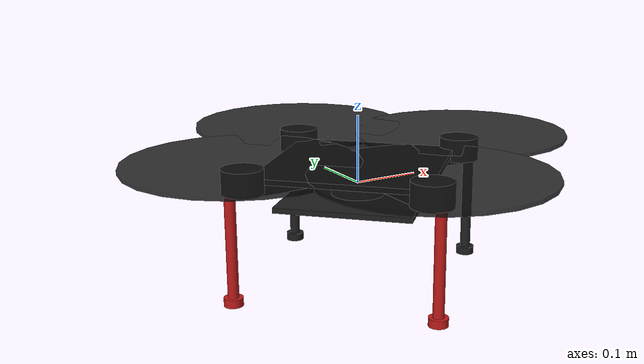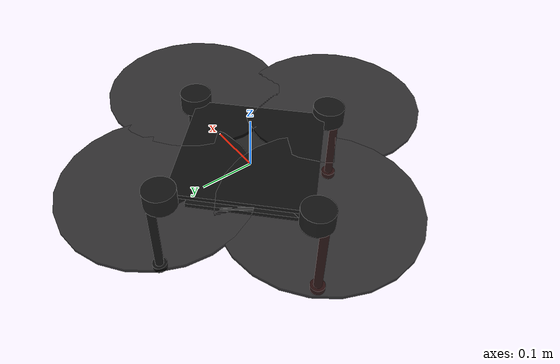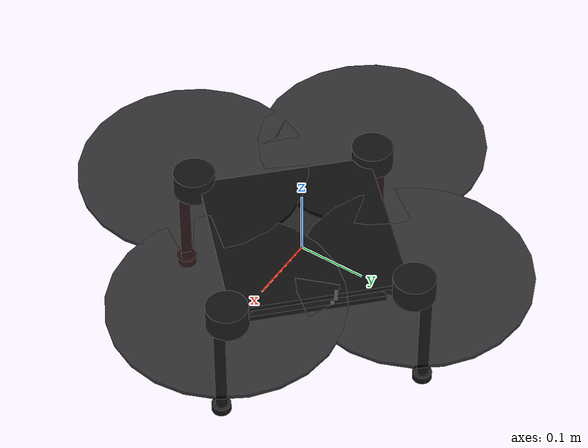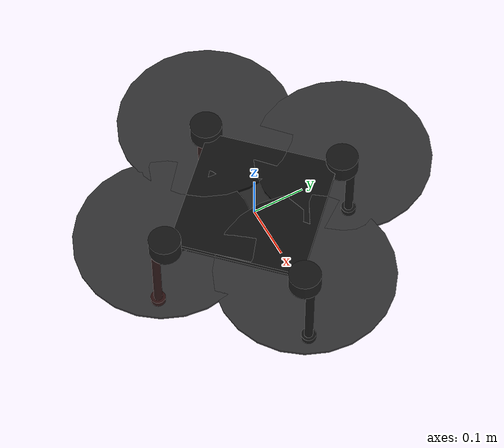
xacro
<?xml version="1.0"?>
<robot name="x500_visual" xmlns:xacro="http://ros.org/wiki/xacro">

  <xacro:property name="M_PI" value="3.14159265358979"/>

  <!-- ── Material colours ────────────────────────────────────────────────── -->
  <material name="carbon_dark">  <color rgba="0.12 0.12 0.12 1.0"/></material>
  <material name="carbon_light"> <color rgba="0.22 0.22 0.22 1.0"/></material>
  <material name="blue_plastic"> <color rgba="0.20 0.35 0.65 1.0"/></material>
  <material name="red_plastic">  <color rgba="0.75 0.10 0.10 1.0"/></material>
  <material name="prop_black">   <color rgba="0.08 0.08 0.08 0.85"/></material>

  <!-- ── Base link (drone body) ───────────────────────────────────────────── -->
  <link name="base_link">
    <inertial>
      <mass value="0.001"/>
      <inertia ixx="1e-6" ixy="0" ixz="0" iyy="1e-6" iyz="0" izz="1e-6"/>
    </inertial>

    <!-- Top carbon plate -->
    <visual>
      <origin xyz="0 0 0.028" rpy="0 0 ${M_PI/4}"/>
      <geometry><box size="0.250 0.250 0.008"/></geometry>
      <material name="carbon_dark"/>
    </visual>
    <!-- Bottom carbon plate -->
    <visual>
      <origin xyz="0 0 -0.020" rpy="0 0 ${M_PI/4}"/>
      <geometry><box size="0.200 0.200 0.008"/></geometry>
      <material name="carbon_dark"/>
    </visual>
    <!-- Central standoff stack -->
    <visual>
      <origin xyz="0 0 0.004" rpy="0 0 0"/>
      <geometry><cylinder radius="0.040" length="0.055"/></geometry>
      <material name="carbon_light"/>
    </visual>

    <!-- ── Arms — cross layout (+X, +Y, -X, -Y) ─────────────────────────── -->
    <!-- X-axis arm -->
    <visual>
      <origin xyz="0 0 0.018" rpy="0 0 0"/>
      <geometry><box size="0.370 0.030 0.018"/></geometry>
      <material name="carbon_dark"/>
    </visual>
    <!-- Y-axis arm -->
    <visual>
      <origin xyz="0 0 0.018" rpy="0 0 ${M_PI/2}"/>
      <geometry><box size="0.370 0.030 0.018"/></geometry>
      <material name="carbon_dark"/>
    </visual>

    <!-- ── Arm-tip motor pods (∅60 × 35 mm) ──────────────────────────────── -->
    <!-- +X motor -->
    <visual>
      <origin xyz=" 0.185 0 0.030" rpy="0 0 0"/>
      <geometry><cylinder radius="0.030" length="0.035"/></geometry>
      <material name="carbon_light"/>
    </visual>
    <!-- -X motor -->
    <visual>
      <origin xyz="-0.185 0 0.030" rpy="0 0 0"/>
      <geometry><cylinder radius="0.030" length="0.035"/></geometry>
      <material name="carbon_light"/>
    </visual>
    <!-- +Y motor -->
    <visual>
      <origin xyz="0  0.185 0.030" rpy="0 0 0"/>
      <geometry><cylinder radius="0.030" length="0.035"/></geometry>
      <material name="carbon_light"/>
    </visual>
    <!-- -Y motor -->
    <visual>
      <origin xyz="0 -0.185 0.030" rpy="0 0 0"/>
      <geometry><cylinder radius="0.030" length="0.035"/></geometry>
      <material name="carbon_light"/>
    </visual>

    <!-- ── Propeller discs (∅330 × 6 mm) — give visual cue of rotor span ── -->
    <!-- +X prop -->
    <visual>
      <origin xyz=" 0.185 0 0.054" rpy="0 0 0"/>
      <geometry><cylinder radius="0.165" length="0.006"/></geometry>
      <material name="prop_black"/>
    </visual>
    <!-- -X prop -->
    <visual>
      <origin xyz="-0.185 0 0.054" rpy="0 0 0"/>
      <geometry><cylinder radius="0.165" length="0.006"/></geometry>
      <material name="prop_black"/>
    </visual>
    <!-- +Y prop -->
    <visual>
      <origin xyz="0  0.185 0.054" rpy="0 0 0"/>
      <geometry><cylinder radius="0.165" length="0.006"/></geometry>
      <material name="prop_black"/>
    </visual>
    <!-- -Y prop -->
    <visual>
      <origin xyz="0 -0.185 0.054" rpy="0 0 0"/>
      <geometry><cylinder radius="0.165" length="0.006"/></geometry>
      <material name="prop_black"/>
    </visual>

    <!-- +X leg (front, black) -->
    <visual>
      <origin xyz=" 0.205 0 -0.060" rpy="0 0 0"/>
      <geometry><cylinder radius="0.008" length="0.165"/></geometry>
      <material name="carbon_dark"/>
    </visual>
    <!-- -X leg (back, red — matches X500 colour coding) -->
    <visual>
      <origin xyz="-0.205 0 -0.060" rpy="0 0 0"/>
      <geometry><cylinder radius="0.008" length="0.165"/></geometry>
      <material name="red_plastic"/>
    </visual>
    <!-- +Y leg (front-left, black) -->
    <visual>
      <origin xyz="0  0.205 -0.060" rpy="0 0 0"/>
      <geometry><cylinder radius="0.008" length="0.165"/></geometry>
      <material name="carbon_dark"/>
    </visual>
    <!-- -Y leg (back-right, red) -->
    <visual>
      <origin xyz="0 -0.205 -0.060" rpy="0 0 0"/>
      <geometry><cylinder radius="0.008" length="0.165"/></geometry>
      <material name="red_plastic"/>
    </visual>

    <!-- ── Leg foot pads (small cylinders at leg bases) ───────────────────── -->
    <visual>
      <origin xyz=" 0.205 0 -0.143" rpy="0 0 0"/>
      <geometry><cylinder radius="0.014" length="0.012"/></geometry>
      <material name="carbon_dark"/>
    </visual>
    <visual>
      <origin xyz="-0.205 0 -0.143" rpy="0 0 0"/>
      <geometry><cylinder radius="0.014" length="0.012"/></geometry>
      <material name="red_plastic"/>
    </visual>
    <visual>
      <origin xyz="0  0.205 -0.143" rpy="0 0 0"/>
      <geometry><cylinder radius="0.014" length="0.012"/></geometry>
      <material name="carbon_dark"/>
    </visual>
    <visual>
      <origin xyz="0 -0.205 -0.143" rpy="0 0 0"/>
      <geometry><cylinder radius="0.014" length="0.012"/></geometry>
      <material name="red_plastic"/>
    </visual>

  </link>

  <!-- Make base_link static in Gazebo (no gravity, teleportable via set_model_state) -->
  <gazebo reference="base_link">
    <static>true</static>
    <turnGravityOff>true</turnGravityOff>
  </gazebo>

</robot>
